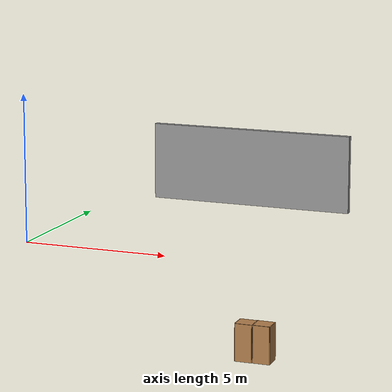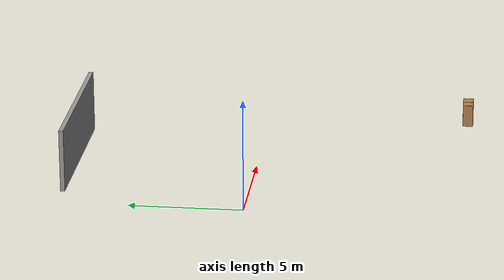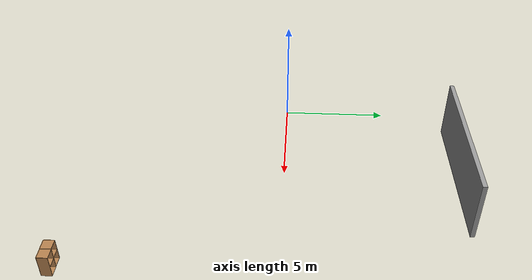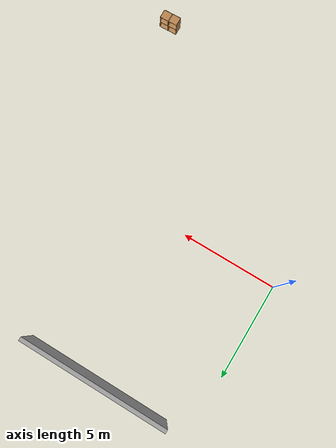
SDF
<sdf version="1.7">
 <world name="factory">
  <model name="deletion_wall">
   <static>1</static>
   <link name="sensing_link">
    <gravity>0</gravity>
    <sensor name="object_disposal_contact" type="contact">
     <update_rate>10</update_rate>
     <contact><collision>collision</collision><topic>__default_topic__</topic></contact>
    </sensor>
    <collision name="collision"><geometry><box><size>0.1 1 1</size></box></geometry></collision>
    <visual name="visual">
     <geometry><box><size>0.1 1 1</size></box></geometry>
     <cast_shadows>0</cast_shadows>
     <transparency>100</transparency>
    </visual>
   </link>
   <plugin name="object_disposal_plugin" filename="libObjectDisposalPlugin.so">
    <contact_sensor_name>object_disposal_contact</contact_sensor_name>
    <contact_side_normal>1 0 0</contact_side_normal>
    <disposal_pose>30 30 0 0 0 0</disposal_pose>
    <update_rate>5</update_rate>
   </plugin>
   <pose>0.199032 -1.08981 0 0 -0 0</pose>
  </model>
  <model name="cabinet_clone_1">
   <static>1</static>
   <link name="cabinet_bottom_plate">
    <inertial>
     <pose>0 0 -1 0 -0 0</pose>
     <inertia><ixx>2.05</ixx><ixy>0</ixy><ixz>0</ixz><iyy>2.05</iyy><iyz>0</iyz><izz>2.05</izz></inertia>
     <mass>25</mass>
    </inertial>
    <collision name="cabinet_bottom_plate_geom">
     <pose>0 0 0.01 0 -0 0</pose>
     <geometry><box><size>0.45 0.45 0.02</size></box></geometry>
    </collision>
    <visual name="cabinet_bottom_plate_geom_visual">
     <pose>0 0 0.01 0 -0 0</pose>
     <geometry><box><size>0.45 0.45 0.02</size></box></geometry>
     <material>
      <script><uri>file://media/materials/scripts/gazebo.material</uri><name>Gazebo/Wood</name></script>
     </material>
    </visual>
    <collision name="cabinet_bottom_plate_geom_cabinet_back_plate">
     <pose>0.235 0 0.51 0 -0 0</pose>
     <geometry><box><size>0.02 0.45 1.02</size></box></geometry>
    </collision>
    <visual name="cabinet_bottom_plate_geom_cabinet_back_plate_visual">
     <pose>0.235 0 0.51 0 -0 0</pose>
     <geometry><box><size>0.02 0.45 1.02</size></box></geometry>
     <material>
      <script><uri>file://media/materials/scripts/gazebo.material</uri><name>Gazebo/Wood</name></script>
     </material>
    </visual>
    <collision name="cabinet_bottom_plate_geom_cabinet_left_plate">
     <pose>0 0.235 0.51 0 -0 0</pose>
     <geometry><box><size>0.45 0.02 1.02</size></box></geometry>
    </collision>
    <visual name="cabinet_bottom_plate_geom_cabinet_left_plate_visual">
     <pose>0 0.235 0.51 0 -0 0</pose>
     <geometry><box><size>0.45 0.02 1.02</size></box></geometry>
     <material>
      <script><uri>file://media/materials/scripts/gazebo.material</uri><name>Gazebo/Wood</name></script>
     </material>
    </visual>
    <collision name="cabinet_bottom_plate_geom_cabinet_middle_plate">
     <pose>0 0 0.51 0 -0 0</pose>
     <geometry><box><size>0.45 0.45 0.02</size></box></geometry>
    </collision>
    <visual name="cabinet_bottom_plate_geom_cabinet_middle_plate_visual">
     <pose>0 0 0.51 0 -0 0</pose>
     <geometry><box><size>0.45 0.45 0.02</size></box></geometry>
     <material>
      <script><uri>file://media/materials/scripts/gazebo.material</uri><name>Gazebo/Wood</name></script>
     </material>
    </visual>
    <collision name="cabinet_bottom_plate_geom_cabinet_right_plate">
     <pose>0 -0.235 0.51 0 -0 0</pose>
     <geometry><box><size>0.45 0.02 1.02</size></box></geometry>
    </collision>
    <visual name="cabinet_bottom_plate_geom_cabinet_right_plate_visual">
     <pose>0 -0.235 0.51 0 -0 0</pose>
     <geometry><box><size>0.45 0.02 1.02</size></box></geometry>
     <material>
      <script><uri>file://media/materials/scripts/gazebo.material</uri><name>Gazebo/Wood</name></script>
     </material>
    </visual>
    <collision name="cabinet_bottom_plate_geom_cabinet_top_plate">
     <pose>0 0 1.01 0 -0 0</pose>
     <geometry><box><size>0.45 0.45 0.02</size></box></geometry>
    </collision>
    <visual name="cabinet_bottom_plate_geom_cabinet_top_plate_visual">
     <pose>0 0 1.01 0 -0 0</pose>
     <geometry><box><size>0.45 0.45 0.02</size></box></geometry>
     <material>
      <script><uri>file://media/materials/scripts/gazebo.material</uri><name>Gazebo/Wood</name></script>
     </material>
    </visual>
   </link>
   <pose>11.5886 -9.15198 0.037072 0 0 -1.55676</pose>
  </model>
  <model name="cabinet_clone_2">
   <static>1</static>
   <link name="cabinet_bottom_plate">
    <inertial>
     <pose>0 0 -1 0 -0 0</pose>
     <inertia><ixx>2.05</ixx><ixy>0</ixy><ixz>0</ixz><iyy>2.05</iyy><iyz>0</iyz><izz>2.05</izz></inertia>
     <mass>25</mass>
    </inertial>
    <collision name="cabinet_bottom_plate_geom">
     <pose>0 0 0.01 0 -0 0</pose>
     <geometry><box><size>0.45 0.45 0.02</size></box></geometry>
    </collision>
    <visual name="cabinet_bottom_plate_geom_visual">
     <pose>0 0 0.01 0 -0 0</pose>
     <geometry><box><size>0.45 0.45 0.02</size></box></geometry>
     <material>
      <script><uri>file://media/materials/scripts/gazebo.material</uri><name>Gazebo/Wood</name></script>
     </material>
    </visual>
    <collision name="cabinet_bottom_plate_geom_cabinet_back_plate">
     <pose>0.235 0 0.51 0 -0 0</pose>
     <geometry><box><size>0.02 0.45 1.02</size></box></geometry>
    </collision>
    <visual name="cabinet_bottom_plate_geom_cabinet_back_plate_visual">
     <pose>0.235 0 0.51 0 -0 0</pose>
     <geometry><box><size>0.02 0.45 1.02</size></box></geometry>
     <material>
      <script><uri>file://media/materials/scripts/gazebo.material</uri><name>Gazebo/Wood</name></script>
     </material>
    </visual>
    <collision name="cabinet_bottom_plate_geom_cabinet_left_plate">
     <pose>0 0.235 0.51 0 -0 0</pose>
     <geometry><box><size>0.45 0.02 1.02</size></box></geometry>
    </collision>
    <visual name="cabinet_bottom_plate_geom_cabinet_left_plate_visual">
     <pose>0 0.235 0.51 0 -0 0</pose>
     <geometry><box><size>0.45 0.02 1.02</size></box></geometry>
     <material>
      <script><uri>file://media/materials/scripts/gazebo.material</uri><name>Gazebo/Wood</name></script>
     </material>
    </visual>
    <collision name="cabinet_bottom_plate_geom_cabinet_middle_plate">
     <pose>0 0 0.51 0 -0 0</pose>
     <geometry><box><size>0.45 0.45 0.02</size></box></geometry>
    </collision>
    <visual name="cabinet_bottom_plate_geom_cabinet_middle_plate_visual">
     <pose>0 0 0.51 0 -0 0</pose>
     <geometry><box><size>0.45 0.45 0.02</size></box></geometry>
     <material>
      <script><uri>file://media/materials/scripts/gazebo.material</uri><name>Gazebo/Wood</name></script>
     </material>
    </visual>
    <collision name="cabinet_bottom_plate_geom_cabinet_right_plate">
     <pose>0 -0.235 0.51 0 -0 0</pose>
     <geometry><box><size>0.45 0.02 1.02</size></box></geometry>
    </collision>
    <visual name="cabinet_bottom_plate_geom_cabinet_right_plate_visual">
     <pose>0 -0.235 0.51 0 -0 0</pose>
     <geometry><box><size>0.45 0.02 1.02</size></box></geometry>
     <material>
      <script><uri>file://media/materials/scripts/gazebo.material</uri><name>Gazebo/Wood</name></script>
     </material>
    </visual>
    <collision name="cabinet_bottom_plate_geom_cabinet_top_plate">
     <pose>0 0 1.01 0 -0 0</pose>
     <geometry><box><size>0.45 0.45 0.02</size></box></geometry>
    </collision>
    <visual name="cabinet_bottom_plate_geom_cabinet_top_plate_visual">
     <pose>0 0 1.01 0 -0 0</pose>
     <geometry><box><size>0.45 0.45 0.02</size></box></geometry>
     <material>
      <script><uri>file://media/materials/scripts/gazebo.material</uri><name>Gazebo/Wood</name></script>
     </material>
    </visual>
   </link>
   <pose>11.1088 -9.16946 0.037072 0 0 -1.55676</pose>
  </model>
  <model name="grey_wall_clone_clone">
   <static>1</static>
   <link name="link">
    <pose>0 0 1.4 0 -0 0</pose>
    <collision name="collision"><geometry><box><size>7.5 0.2 2.8</size></box></geometry></collision>
    <visual name="visual">
     <cast_shadows>0</cast_shadows>
     <geometry><box><size>7.5 0.2 2.8</size></box></geometry>
     <material>
      <script>
       <uri>model://grey_wall/materials/scripts</uri>
       <uri>model://grey_wall/materials/textures</uri>
       <name>vrc/grey_wall</name>
      </script>
     </material>
    </visual>
   </link>
   <pose>5.02767 8.08403 0 0 -0 0</pose>
  </model>
 </world>
</sdf>
